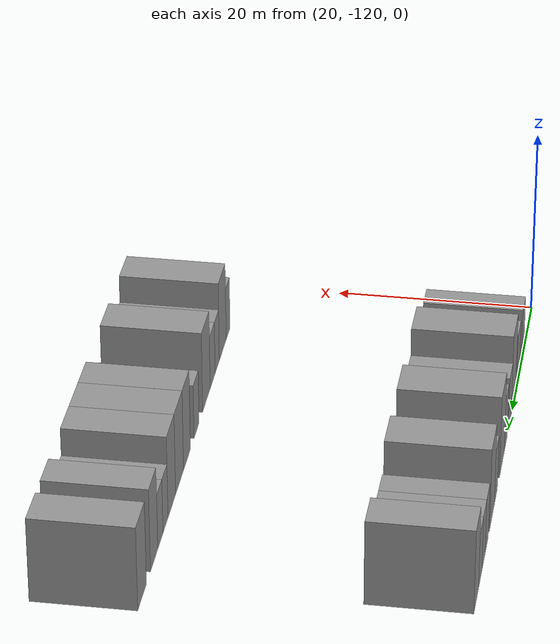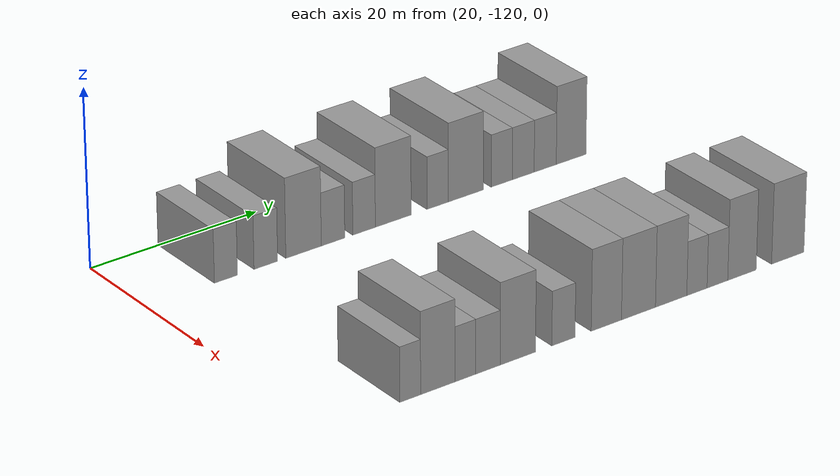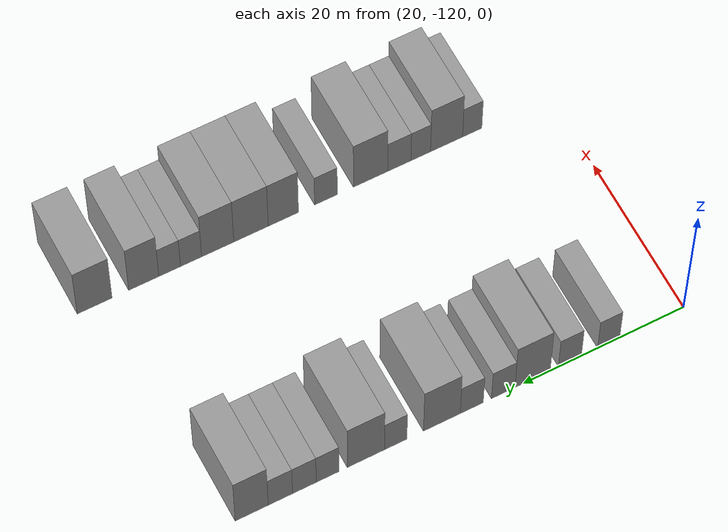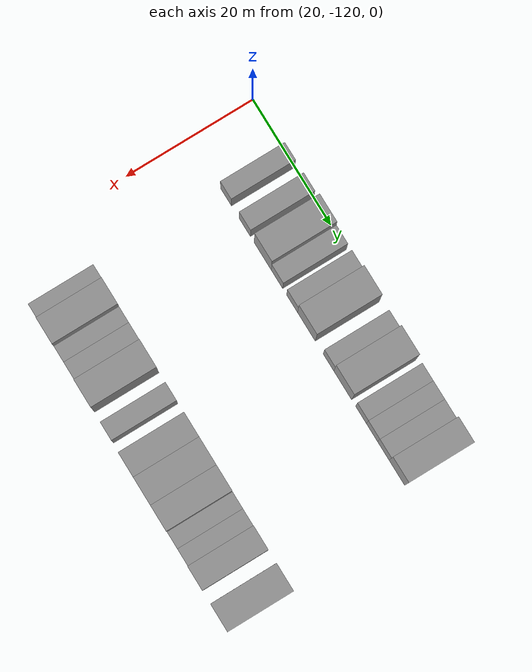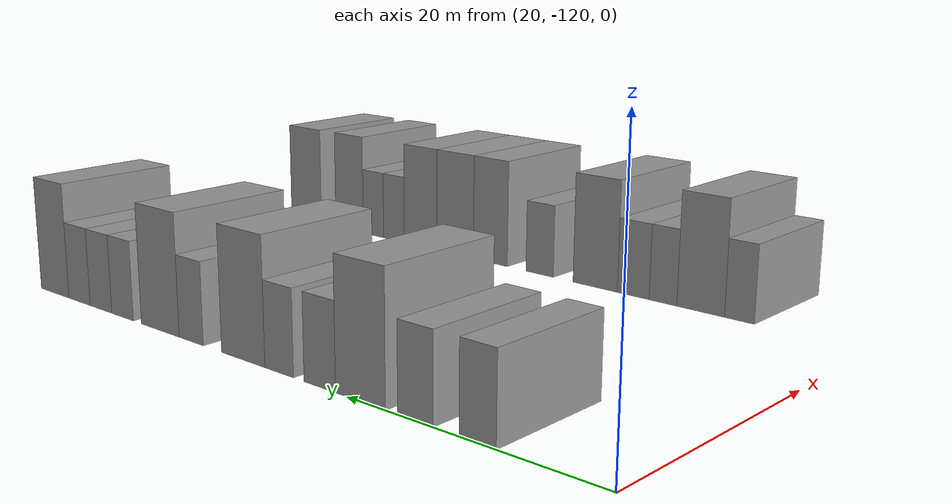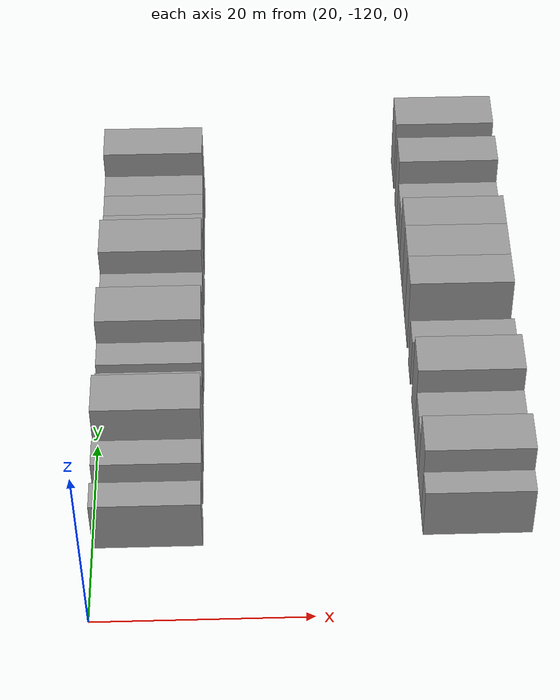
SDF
<sdf version="1.6">
 <world name="default">
  <model name="building_29">
   <static>1</static>
   <pose>25.0000 -110.5674 0 0.000000 0.000000 0.000000</pose>
   <link name="link">
    <pose>0 0 3.00 0 0 0</pose>
    <collision name="collision"><geometry><box><size>10.0000 2.7659 6.0000</size></box></geometry></collision>
    <visual name="visual">
     <cast_shadows>0</cast_shadows>
     <geometry><box><size>10.0000 2.7659 6.0000</size></box></geometry>
     <material>
      <script>
       <uri>model://grey_wall/materials/scripts</uri>
       <uri>model://grey_wall/materials/textures</uri>
       <name>vrc/grey_wall</name>
      </script>
     </material>
    </visual>
   </link>
  </model>
  <model name="building_30">
   <static>1</static>
   <pose>25.0000 -105.7536 0 0.000000 0.000000 0.000000</pose>
   <link name="link">
    <pose>0 0 3.00 0 0 0</pose>
    <collision name="collision"><geometry><box><size>10.0000 2.8618 6.0000</size></box></geometry></collision>
    <visual name="visual">
     <cast_shadows>0</cast_shadows>
     <geometry><box><size>10.0000 2.8618 6.0000</size></box></geometry>
     <material>
      <script>
       <uri>model://grey_wall/materials/scripts</uri>
       <uri>model://grey_wall/materials/textures</uri>
       <name>vrc/grey_wall</name>
      </script>
     </material>
    </visual>
   </link>
  </model>
  <model name="building_31">
   <static>1</static>
   <pose>25.0000 -101.1502 0 0.000000 0.000000 0.000000</pose>
   <link name="link">
    <pose>0 0 4.50 0 0 0</pose>
    <collision name="collision"><geometry><box><size>10.0000 4.3452 9.0000</size></box></geometry></collision>
    <visual name="visual">
     <cast_shadows>0</cast_shadows>
     <geometry><box><size>10.0000 4.3452 9.0000</size></box></geometry>
     <material>
      <script>
       <uri>model://grey_wall/materials/scripts</uri>
       <uri>model://grey_wall/materials/textures</uri>
       <name>vrc/grey_wall</name>
      </script>
     </material>
    </visual>
   </link>
  </model>
  <model name="building_32">
   <static>1</static>
   <pose>25.0000 -97.5280 0 0.000000 0.000000 0.000000</pose>
   <link name="link">
    <pose>0 0 3.00 0 0 0</pose>
    <collision name="collision"><geometry><box><size>10.0000 2.8991 6.0000</size></box></geometry></collision>
    <visual name="visual">
     <cast_shadows>0</cast_shadows>
     <geometry><box><size>10.0000 2.8991 6.0000</size></box></geometry>
     <material>
      <script>
       <uri>model://grey_wall/materials/scripts</uri>
       <uri>model://grey_wall/materials/textures</uri>
       <name>vrc/grey_wall</name>
      </script>
     </material>
    </visual>
   </link>
  </model>
  <model name="building_33">
   <static>1</static>
   <pose>25.0000 -93.6743 0 0.000000 0.000000 0.000000</pose>
   <link name="link">
    <pose>0 0 3.00 0 0 0</pose>
    <collision name="collision"><geometry><box><size>10.0000 2.8083 6.0000</size></box></geometry></collision>
    <visual name="visual">
     <cast_shadows>0</cast_shadows>
     <geometry><box><size>10.0000 2.8083 6.0000</size></box></geometry>
     <material>
      <script>
       <uri>model://grey_wall/materials/scripts</uri>
       <uri>model://grey_wall/materials/textures</uri>
       <name>vrc/grey_wall</name>
      </script>
     </material>
    </visual>
   </link>
  </model>
  <model name="building_34">
   <static>1</static>
   <pose>25.0000 -90.0239 0 0.000000 0.000000 0.000000</pose>
   <link name="link">
    <pose>0 0 4.50 0 0 0</pose>
    <collision name="collision"><geometry><box><size>10.0000 4.4925 9.0000</size></box></geometry></collision>
    <visual name="visual">
     <cast_shadows>0</cast_shadows>
     <geometry><box><size>10.0000 4.4925 9.0000</size></box></geometry>
     <material>
      <script>
       <uri>model://grey_wall/materials/scripts</uri>
       <uri>model://grey_wall/materials/textures</uri>
       <name>vrc/grey_wall</name>
      </script>
     </material>
    </visual>
   </link>
  </model>
  <model name="building_35">
   <static>1</static>
   <pose>25.0000 -84.4190 0 0.000000 0.000000 0.000000</pose>
   <link name="link">
    <pose>0 0 3.00 0 0 0</pose>
    <collision name="collision"><geometry><box><size>10.0000 2.7171 6.0000</size></box></geometry></collision>
    <visual name="visual">
     <cast_shadows>0</cast_shadows>
     <geometry><box><size>10.0000 2.7171 6.0000</size></box></geometry>
     <material>
      <script>
       <uri>model://grey_wall/materials/scripts</uri>
       <uri>model://grey_wall/materials/textures</uri>
       <name>vrc/grey_wall</name>
      </script>
     </material>
    </visual>
   </link>
  </model>
  <model name="building_36">
   <static>1</static>
   <pose>25.0000 -80.8157 0 0.000000 0.000000 0.000000</pose>
   <link name="link">
    <pose>0 0 4.50 0 0 0</pose>
    <collision name="collision"><geometry><box><size>10.0000 4.4894 9.0000</size></box></geometry></collision>
    <visual name="visual">
     <cast_shadows>0</cast_shadows>
     <geometry><box><size>10.0000 4.4894 9.0000</size></box></geometry>
     <material>
      <script>
       <uri>model://grey_wall/materials/scripts</uri>
       <uri>model://grey_wall/materials/textures</uri>
       <name>vrc/grey_wall</name>
      </script>
     </material>
    </visual>
   </link>
  </model>
  <model name="building_37">
   <static>1</static>
   <pose>25.0000 -76.2087 0 0.000000 0.000000 0.000000</pose>
   <link name="link">
    <pose>0 0 3.00 0 0 0</pose>
    <collision name="collision"><geometry><box><size>10.0000 2.7245 6.0000</size></box></geometry></collision>
    <visual name="visual">
     <cast_shadows>0</cast_shadows>
     <geometry><box><size>10.0000 2.7245 6.0000</size></box></geometry>
     <material>
      <script>
       <uri>model://grey_wall/materials/scripts</uri>
       <uri>model://grey_wall/materials/textures</uri>
       <name>vrc/grey_wall</name>
      </script>
     </material>
    </visual>
   </link>
  </model>
  <model name="building_38">
   <static>1</static>
   <pose>25.0000 -73.4222 0 0.000000 0.000000 0.000000</pose>
   <link name="link">
    <pose>0 0 3.00 0 0 0</pose>
    <collision name="collision"><geometry><box><size>10.0000 2.8485 6.0000</size></box></geometry></collision>
    <visual name="visual">
     <cast_shadows>0</cast_shadows>
     <geometry><box><size>10.0000 2.8485 6.0000</size></box></geometry>
     <material>
      <script>
       <uri>model://grey_wall/materials/scripts</uri>
       <uri>model://grey_wall/materials/textures</uri>
       <name>vrc/grey_wall</name>
      </script>
     </material>
    </visual>
   </link>
  </model>
  <model name="building_39">
   <static>1</static>
   <pose>25.0000 -70.5483 0 0.000000 0.000000 0.000000</pose>
   <link name="link">
    <pose>0 0 3.00 0 0 0</pose>
    <collision name="collision"><geometry><box><size>10.0000 2.8994 6.0000</size></box></geometry></collision>
    <visual name="visual">
     <cast_shadows>0</cast_shadows>
     <geometry><box><size>10.0000 2.8994 6.0000</size></box></geometry>
     <material>
      <script>
       <uri>model://grey_wall/materials/scripts</uri>
       <uri>model://grey_wall/materials/textures</uri>
       <name>vrc/grey_wall</name>
      </script>
     </material>
    </visual>
   </link>
  </model>
  <model name="building_40">
   <static>1</static>
   <pose>25.0000 -67.1381 0 0.000000 0.000000 0.000000</pose>
   <link name="link">
    <pose>0 0 4.50 0 0 0</pose>
    <collision name="collision"><geometry><box><size>10.0000 3.9209 9.0000</size></box></geometry></collision>
    <visual name="visual">
     <cast_shadows>0</cast_shadows>
     <geometry><box><size>10.0000 3.9209 9.0000</size></box></geometry>
     <material>
      <script>
       <uri>model://grey_wall/materials/scripts</uri>
       <uri>model://grey_wall/materials/textures</uri>
       <name>vrc/grey_wall</name>
      </script>
     </material>
    </visual>
   </link>
  </model>
  <model name="building_132">
   <static>1</static>
   <pose>55.0000 -110.0604 0 0.000000 0.000000 0.000000</pose>
   <link name="link">
    <pose>0 0 3.00 0 0 0</pose>
    <collision name="collision"><geometry><box><size>10.0000 2.4500 6.0000</size></box></geometry></collision>
    <visual name="visual">
     <cast_shadows>0</cast_shadows>
     <geometry><box><size>10.0000 2.4500 6.0000</size></box></geometry>
     <material>
      <script>
       <uri>model://grey_wall/materials/scripts</uri>
       <uri>model://grey_wall/materials/textures</uri>
       <name>vrc/grey_wall</name>
      </script>
     </material>
    </visual>
   </link>
  </model>
  <model name="building_133">
   <static>1</static>
   <pose>55.0000 -106.7992 0 0.000000 0.000000 0.000000</pose>
   <link name="link">
    <pose>0 0 4.50 0 0 0</pose>
    <collision name="collision"><geometry><box><size>10.0000 4.0723 9.0000</size></box></geometry></collision>
    <visual name="visual">
     <cast_shadows>0</cast_shadows>
     <geometry><box><size>10.0000 4.0723 9.0000</size></box></geometry>
     <material>
      <script>
       <uri>model://grey_wall/materials/scripts</uri>
       <uri>model://grey_wall/materials/textures</uri>
       <name>vrc/grey_wall</name>
      </script>
     </material>
    </visual>
   </link>
  </model>
  <model name="building_134">
   <static>1</static>
   <pose>55.0000 -103.5260 0 0.000000 0.000000 0.000000</pose>
   <link name="link">
    <pose>0 0 3.00 0 0 0</pose>
    <collision name="collision"><geometry><box><size>10.0000 2.4742 6.0000</size></box></geometry></collision>
    <visual name="visual">
     <cast_shadows>0</cast_shadows>
     <geometry><box><size>10.0000 2.4742 6.0000</size></box></geometry>
     <material>
      <script>
       <uri>model://grey_wall/materials/scripts</uri>
       <uri>model://grey_wall/materials/textures</uri>
       <name>vrc/grey_wall</name>
      </script>
     </material>
    </visual>
   </link>
  </model>
  <model name="building_135">
   <static>1</static>
   <pose>55.0000 -100.8201 0 0.000000 0.000000 0.000000</pose>
   <link name="link">
    <pose>0 0 3.00 0 0 0</pose>
    <collision name="collision"><geometry><box><size>10.0000 2.9376 6.0000</size></box></geometry></collision>
    <visual name="visual">
     <cast_shadows>0</cast_shadows>
     <geometry><box><size>10.0000 2.9376 6.0000</size></box></geometry>
     <material>
      <script>
       <uri>model://grey_wall/materials/scripts</uri>
       <uri>model://grey_wall/materials/textures</uri>
       <name>vrc/grey_wall</name>
      </script>
     </material>
    </visual>
   </link>
  </model>
  <model name="building_136">
   <static>1</static>
   <pose>55.0000 -97.2091 0 0.000000 0.000000 0.000000</pose>
   <link name="link">
    <pose>0 0 4.50 0 0 0</pose>
    <collision name="collision"><geometry><box><size>10.0000 4.2844 9.0000</size></box></geometry></collision>
    <visual name="visual">
     <cast_shadows>0</cast_shadows>
     <geometry><box><size>10.0000 4.2844 9.0000</size></box></geometry>
     <material>
      <script>
       <uri>model://grey_wall/materials/scripts</uri>
       <uri>model://grey_wall/materials/textures</uri>
       <name>vrc/grey_wall</name>
      </script>
     </material>
    </visual>
   </link>
  </model>
  <model name="building_137">
   <static>1</static>
   <pose>55.0000 -91.6468 0 0.000000 0.000000 0.000000</pose>
   <link name="link">
    <pose>0 0 3.00 0 0 0</pose>
    <collision name="collision"><geometry><box><size>10.0000 2.8403 6.0000</size></box></geometry></collision>
    <visual name="visual">
     <cast_shadows>0</cast_shadows>
     <geometry><box><size>10.0000 2.8403 6.0000</size></box></geometry>
     <material>
      <script>
       <uri>model://grey_wall/materials/scripts</uri>
       <uri>model://grey_wall/materials/textures</uri>
       <name>vrc/grey_wall</name>
      </script>
     </material>
    </visual>
   </link>
  </model>
  <model name="building_138">
   <static>1</static>
   <pose>55.0000 -86.3472 0 0.000000 0.000000 0.000000</pose>
   <link name="link">
    <pose>0 0 4.50 0 0 0</pose>
    <collision name="collision"><geometry><box><size>10.0000 3.7589 9.0000</size></box></geometry></collision>
    <visual name="visual">
     <cast_shadows>0</cast_shadows>
     <geometry><box><size>10.0000 3.7589 9.0000</size></box></geometry>
     <material>
      <script>
       <uri>model://grey_wall/materials/scripts</uri>
       <uri>model://grey_wall/materials/textures</uri>
       <name>vrc/grey_wall</name>
      </script>
     </material>
    </visual>
   </link>
  </model>
  <model name="building_139">
   <static>1</static>
   <pose>55.0000 -82.3375 0 0.000000 0.000000 0.000000</pose>
   <link name="link">
    <pose>0 0 4.50 0 0 0</pose>
    <collision name="collision"><geometry><box><size>10.0000 4.2604 9.0000</size></box></geometry></collision>
    <visual name="visual">
     <cast_shadows>0</cast_shadows>
     <geometry><box><size>10.0000 4.2604 9.0000</size></box></geometry>
     <material>
      <script>
       <uri>model://grey_wall/materials/scripts</uri>
       <uri>model://grey_wall/materials/textures</uri>
       <name>vrc/grey_wall</name>
      </script>
     </material>
    </visual>
   </link>
  </model>
  <model name="building_140">
   <static>1</static>
   <pose>55.0000 -78.2278 0 0.000000 0.000000 0.000000</pose>
   <link name="link">
    <pose>0 0 4.50 0 0 0</pose>
    <collision name="collision"><geometry><box><size>10.0000 3.9591 9.0000</size></box></geometry></collision>
    <visual name="visual">
     <cast_shadows>0</cast_shadows>
     <geometry><box><size>10.0000 3.9591 9.0000</size></box></geometry>
     <material>
      <script>
       <uri>model://grey_wall/materials/scripts</uri>
       <uri>model://grey_wall/materials/textures</uri>
       <name>vrc/grey_wall</name>
      </script>
     </material>
    </visual>
   </link>
  </model>
  <model name="building_141">
   <static>1</static>
   <pose>55.0000 -74.9540 0 0.000000 0.000000 0.000000</pose>
   <link name="link">
    <pose>0 0 3.00 0 0 0</pose>
    <collision name="collision"><geometry><box><size>10.0000 2.5884 6.0000</size></box></geometry></collision>
    <visual name="visual">
     <cast_shadows>0</cast_shadows>
     <geometry><box><size>10.0000 2.5884 6.0000</size></box></geometry>
     <material>
      <script>
       <uri>model://grey_wall/materials/scripts</uri>
       <uri>model://grey_wall/materials/textures</uri>
       <name>vrc/grey_wall</name>
      </script>
     </material>
    </visual>
   </link>
  </model>
  <model name="building_142">
   <static>1</static>
   <pose>55.0000 -72.3371 0 0.000000 0.000000 0.000000</pose>
   <link name="link">
    <pose>0 0 3.00 0 0 0</pose>
    <collision name="collision"><geometry><box><size>10.0000 2.6453 6.0000</size></box></geometry></collision>
    <visual name="visual">
     <cast_shadows>0</cast_shadows>
     <geometry><box><size>10.0000 2.6453 6.0000</size></box></geometry>
     <material>
      <script>
       <uri>model://grey_wall/materials/scripts</uri>
       <uri>model://grey_wall/materials/textures</uri>
       <name>vrc/grey_wall</name>
      </script>
     </material>
    </visual>
   </link>
  </model>
  <model name="building_143">
   <static>1</static>
   <pose>55.0000 -69.1771 0 0.000000 0.000000 0.000000</pose>
   <link name="link">
    <pose>0 0 4.50 0 0 0</pose>
    <collision name="collision"><geometry><box><size>10.0000 3.6748 9.0000</size></box></geometry></collision>
    <visual name="visual">
     <cast_shadows>0</cast_shadows>
     <geometry><box><size>10.0000 3.6748 9.0000</size></box></geometry>
     <material>
      <script>
       <uri>model://grey_wall/materials/scripts</uri>
       <uri>model://grey_wall/materials/textures</uri>
       <name>vrc/grey_wall</name>
      </script>
     </material>
    </visual>
   </link>
  </model>
  <model name="building_144">
   <static>1</static>
   <pose>55.0000 -63.2246 0 0.000000 0.000000 0.000000</pose>
   <link name="link">
    <pose>0 0 4.50 0 0 0</pose>
    <collision name="collision"><geometry><box><size>10.0000 4.2300 9.0000</size></box></geometry></collision>
    <visual name="visual">
     <cast_shadows>0</cast_shadows>
     <geometry><box><size>10.0000 4.2300 9.0000</size></box></geometry>
     <material>
      <script>
       <uri>model://grey_wall/materials/scripts</uri>
       <uri>model://grey_wall/materials/textures</uri>
       <name>vrc/grey_wall</name>
      </script>
     </material>
    </visual>
   </link>
  </model>
 </world>
</sdf>
